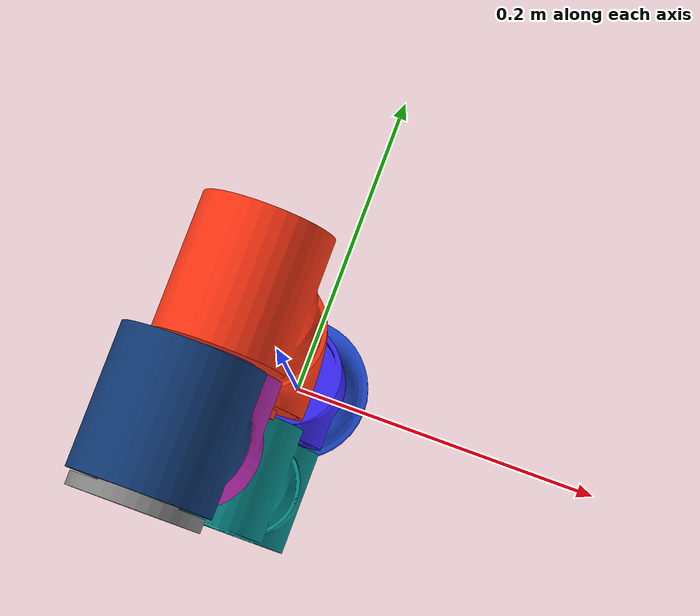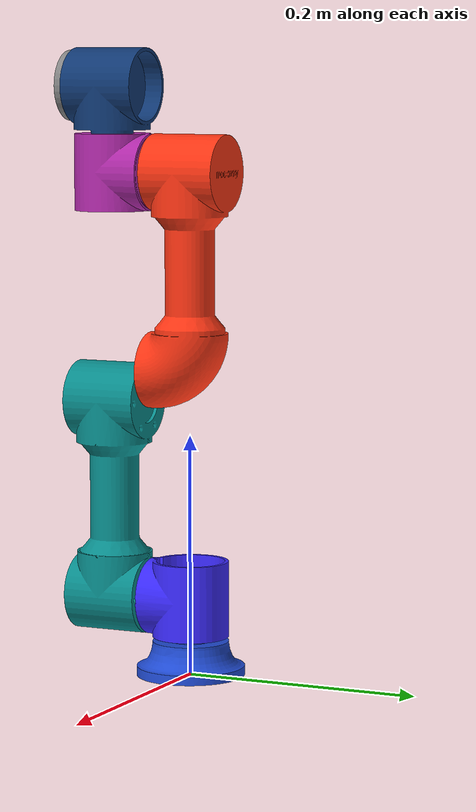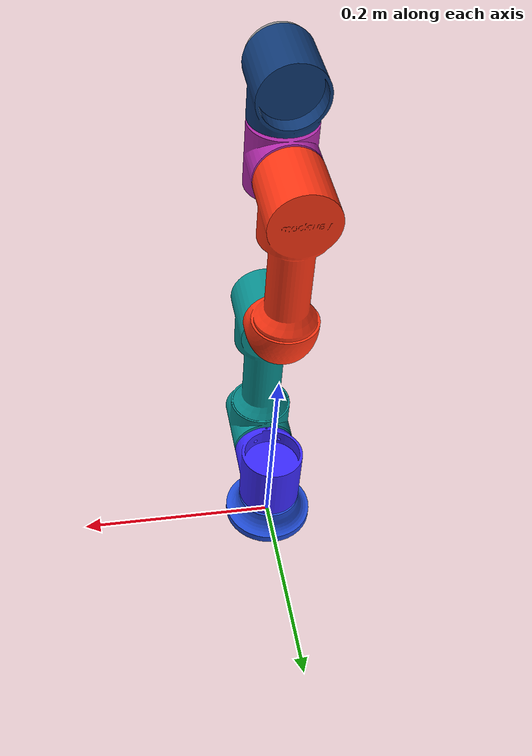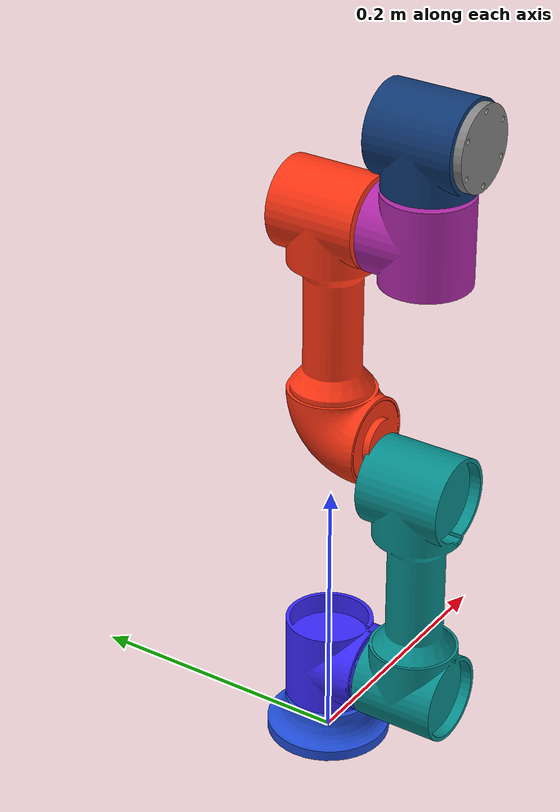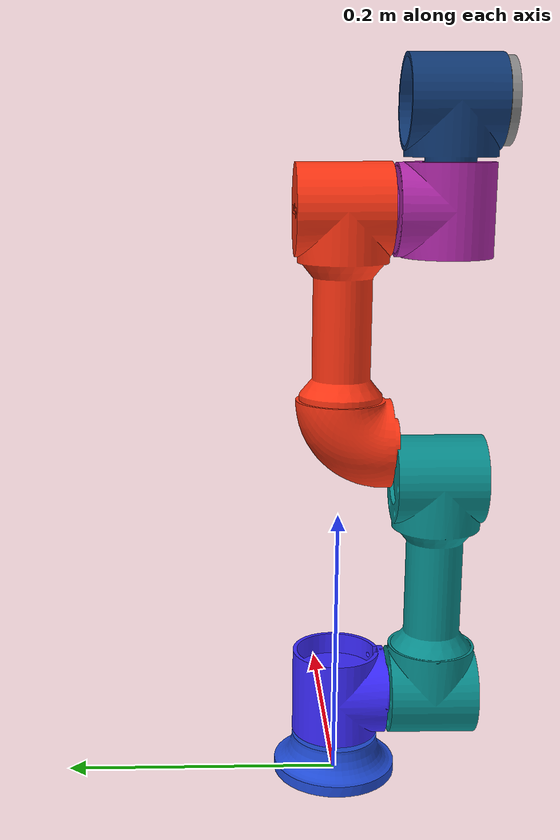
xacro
<?xml version="1.0"?>
<robot xmlns:xacro="http://www.ros.org/wiki/xacro" name="mockway_description">
    <xacro:arg name="initial_positions_file" default="initial_positions.yaml" />
    <xacro:arg name="use_mock_hardware" default="false" />
    <!-- USB-CAN 串口设备：WSL/Linux 默认 /dev/ttyACM0；macOS 传 /dev/cu.usbmodem* -->
    <xacro:arg name="can_interface" default="/dev/ttyACM0" />
    <!-- 碰撞几何：mesh(默认, Linux/WSL 用网格) | primitive(macOS 用包围盒, 规避 FCL 在 Eigen5 下崩溃) -->
    <xacro:arg name="collision_mode" default="mesh" />
    <xacro:property name="collision_mode_prop" value="$(arg collision_mode)" />

    <!-- Import mockway_description urdf file -->
    <xacro:if value="${collision_mode_prop == 'primitive'}">
        <xacro:include filename="$(find mockway_description)/urdf/mockway_description.primitive_collision.urdf" />
    </xacro:if>
    <xacro:unless value="${collision_mode_prop == 'primitive'}">
        <xacro:include filename="$(find mockway_description)/urdf/mockway_description.urdf" />
    </xacro:unless>

    <!-- Import control_xacro -->
    <xacro:include filename="mockway_description.ros2_control.xacro" />

    <xacro:mockway_description_ros2_control name="MockwaySystem" initial_positions_file="$(arg initial_positions_file)" use_mock_hardware="$(arg use_mock_hardware)" can_interface="$(arg can_interface)"/>

</robot>

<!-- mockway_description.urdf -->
<robot name="mockway_description">

  <link name="base_link">
    <inertial>
      <mass value="0.097"/>
      <origin xyz="-0.000 -0.000 0.014" rpy="0 0 0"/>
      <inertia ixx="0.000049" iyy="0.000049" izz="0.000080" ixy="-0.000000" ixz="0.000000" iyz="0.000000"/>
    </inertial>
    <visual>
      <origin xyz="0 0 0" rpy="0 0 0"/>
      <geometry>
        <mesh filename="package://mockway_description/meshes/base_link.stl"/>
      </geometry>
      <material name="">
        <color rgba="0.127 0.301 0.847 1.000"/>
      </material>
    </visual>
    <collision>
      <origin xyz="0 0 0" rpy="0 0 0"/>
      <geometry>
        <mesh filename="package://mockway_description/meshes/base_link.stl"/>
      </geometry>
    </collision>
  </link>

  <joint name="joint1" type="revolute">
    <parent link="base_link"/>
    <child link="link1"/>
    <origin xyz="0.000 0.000 0.064" rpy="0.000 -0.000 0.000"/>
    <axis xyz="0 0 1"/>
    <limit lower="-6.280" upper="6.280" effort="9.000" velocity="3.140"/>
  </joint>

  <link name="link1">
    <inertial>
      <mass value="0.371"/>
      <origin xyz="0.000 -0.003 -0.005" rpy="0 0 0"/>
      <inertia ixx="0.000184" iyy="0.000164" izz="0.000200" ixy="0.000000" ixz="-0.000000" iyz="0.000006"/>
    </inertial>
    <visual>
      <origin xyz="0 0 0" rpy="0 0 0"/>
      <geometry>
        <mesh filename="package://mockway_description/meshes/link1.stl"/>
      </geometry>
      <material name="">
        <color rgba="0.231 0.162 1.000 1.000"/>
      </material>
    </visual>
    <collision>
      <origin xyz="0 0 0" rpy="0 0 0"/>
      <geometry>
        <mesh filename="package://mockway_description/meshes/link1.stl"/>
      </geometry>
    </collision>
  </link>

  <joint name="joint2" type="revolute">
    <parent link="link1"/>
    <child link="link2"/>
    <origin xyz="0.000 0.000 0.000" rpy="1.571 -0.000 0.000"/>
    <axis xyz="0 0 1"/>
    <limit lower="-6.280" upper="6.280" effort="9.000" velocity="3.140"/>
  </joint>

  <link name="link2">
    <inertial>
      <mass value="0.914"/>
      <origin xyz="-0.000 0.095 0.068" rpy="0 0 0"/>
      <inertia ixx="0.007997" iyy="0.000440" izz="0.007995" ixy="-0.000000" ixz="0.000000" iyz="0.000000"/>
    </inertial>
    <visual>
      <origin xyz="0 0 0" rpy="0 0 0"/>
      <geometry>
        <mesh filename="package://mockway_description/meshes/link2.stl"/>
      </geometry>
      <material name="">
        <color rgba="0.031 0.558 0.558 1.000"/>
      </material>
    </visual>
    <collision>
      <origin xyz="0 0 0" rpy="0 0 0"/>
      <geometry>
        <mesh filename="package://mockway_description/meshes/link2.stl"/>
      </geometry>
    </collision>
  </link>

  <joint name="joint3" type="revolute">
    <parent link="link2"/>
    <child link="link3"/>
    <origin xyz="0.000 0.190 0.000" rpy="0.000 -0.000 0.000"/>
    <axis xyz="0 0 1"/>
    <limit lower="-3.140" upper="3.140" effort="9.000" velocity="3.140"/>
  </joint>

  <link name="link3">
    <inertial>
      <mass value="0.481"/>
      <origin xyz="-0.000 0.131 0.006" rpy="0 0 0"/>
      <inertia ixx="0.001799" iyy="0.000245" izz="0.001803" ixy="0.000000" ixz="-0.000000" iyz="0.000070"/>
    </inertial>
    <visual>
      <origin xyz="0 0 0" rpy="0 0 0"/>
      <geometry>
        <mesh filename="package://mockway_description/meshes/link3.stl"/>
      </geometry>
      <material name="">
        <color rgba="1.000 0.212 0.080 1.000"/>
      </material>
    </visual>
    <collision>
      <origin xyz="0 0 0" rpy="0 0 0"/>
      <geometry>
        <mesh filename="package://mockway_description/meshes/link3.stl"/>
      </geometry>
    </collision>
  </link>

  <joint name="joint4" type="revolute">
    <parent link="link3"/>
    <child link="link4"/>
    <origin xyz="0.000 0.163 0.000" rpy="0.000 -0.000 0.000"/>
    <axis xyz="0 0 1"/>
    <limit lower="-6.280" upper="6.280" effort="3.000" velocity="3.140"/>
  </joint>

  <link name="link4">
    <inertial>
      <mass value="0.371"/>
      <origin xyz="0.000 0.005 0.068" rpy="0 0 0"/>
      <inertia ixx="0.000184" iyy="0.000200" izz="0.000164" ixy="0.000000" ixz="0.000000" iyz="-0.000006"/>
    </inertial>
    <visual>
      <origin xyz="0 0 0" rpy="0 0 0"/>
      <geometry>
        <mesh filename="package://mockway_description/meshes/link4.stl"/>
      </geometry>
      <material name="">
        <color rgba="0.701 0.162 0.672 1.000"/>
      </material>
    </visual>
    <collision>
      <origin xyz="0 0 0" rpy="0 0 0"/>
      <geometry>
        <mesh filename="package://mockway_description/meshes/link4.stl"/>
      </geometry>
    </collision>
  </link>

  <joint name="joint5" type="revolute">
    <parent link="link4"/>
    <child link="link5"/>
    <origin xyz="0.000 0.000 0.071" rpy="-1.571 0.000 0.000"/>
    <axis xyz="0 0 1"/>
    <limit lower="-6.280" upper="6.280" effort="3.000" velocity="3.140"/>
  </joint>

  <link name="link5">
    <inertial>
      <mass value="0.371"/>
      <origin xyz="-0.000 -0.005 0.068" rpy="0 0 0"/>
      <inertia ixx="0.000184" iyy="0.000200" izz="0.000164" ixy="0.000000" ixz="-0.000000" iyz="0.000006"/>
    </inertial>
    <visual>
      <origin xyz="0 0 0" rpy="0 0 0"/>
      <geometry>
        <mesh filename="package://mockway_description/meshes/link5.stl"/>
      </geometry>
      <material name="">
        <color rgba="0.061 0.223 0.456 1.000"/>
      </material>
    </visual>
    <collision>
      <origin xyz="0 0 0" rpy="0 0 0"/>
      <geometry>
        <mesh filename="package://mockway_description/meshes/link5.stl"/>
      </geometry>
    </collision>
  </link>

  <joint name="joint6" type="revolute">
    <parent link="link5"/>
    <child link="link6"/>
    <origin xyz="0.000 -0.039 0.071" rpy="1.571 -0.000 0.000"/>
    <axis xyz="0 0 1"/>
    <limit lower="-6.280" upper="6.280" effort="3.000" velocity="3.140"/>
  </joint>

  <link name="link6">
    <inertial>
      <mass value="0.016"/>
      <origin xyz="0.000 -0.000 -0.004" rpy="0 0 0"/>
      <inertia ixx="0.000003" iyy="0.000003" izz="0.000006" ixy="0.000000" ixz="0.000000" iyz="0.000000"/>
    </inertial>
    <visual>
      <origin xyz="0 0 0" rpy="0 0 0"/>
      <geometry>
        <mesh filename="package://mockway_description/meshes/link6.stl"/>
      </geometry>
      <material name="">
        <color rgba="0.527 0.527 0.527 1.000"/>
      </material>
    </visual>
    <collision>
      <origin xyz="0 0 0" rpy="0 0 0"/>
      <geometry>
        <mesh filename="package://mockway_description/meshes/link6.stl"/>
      </geometry>
    </collision>
  </link>

</robot>
